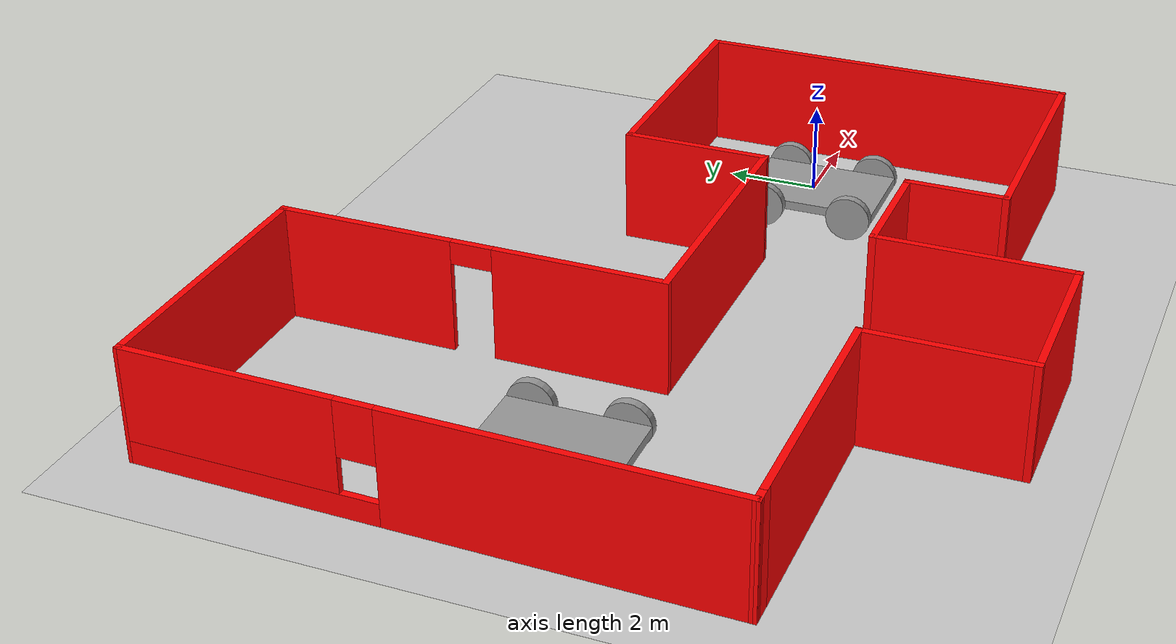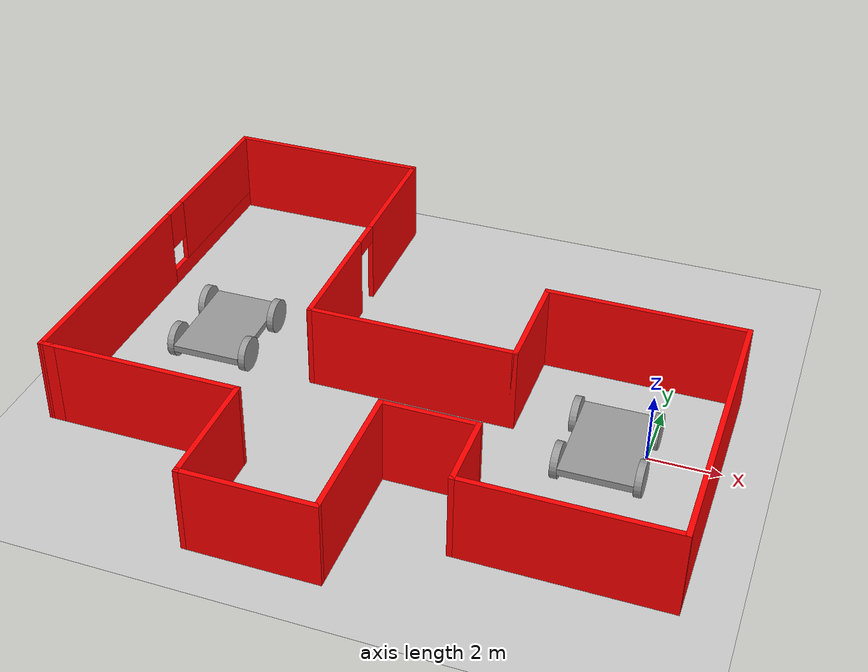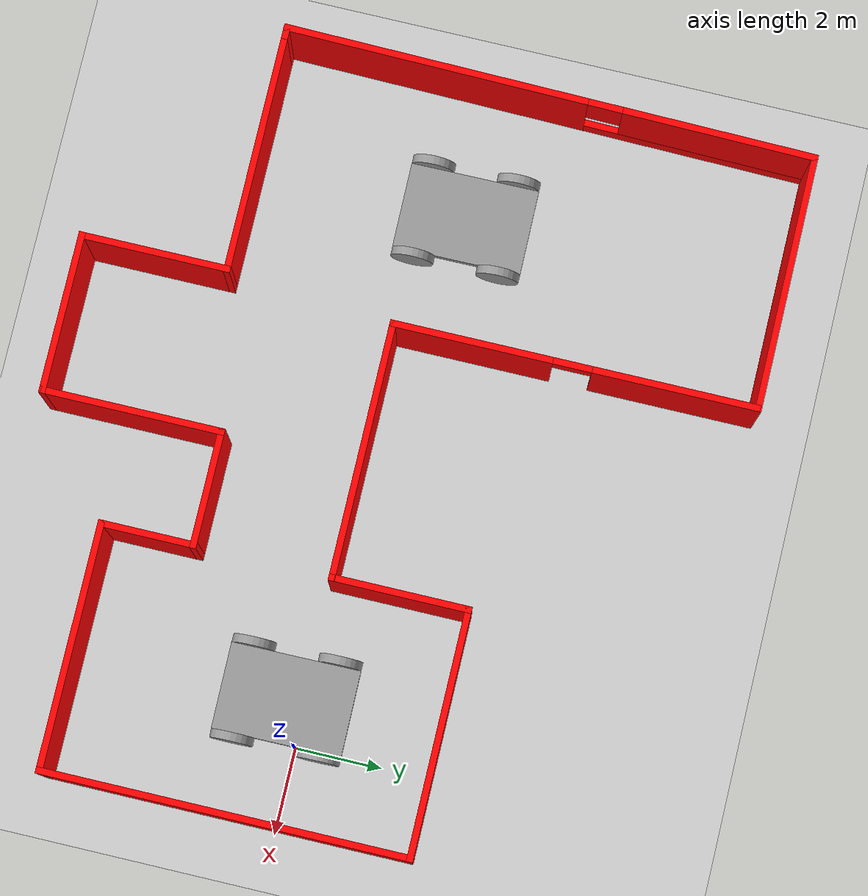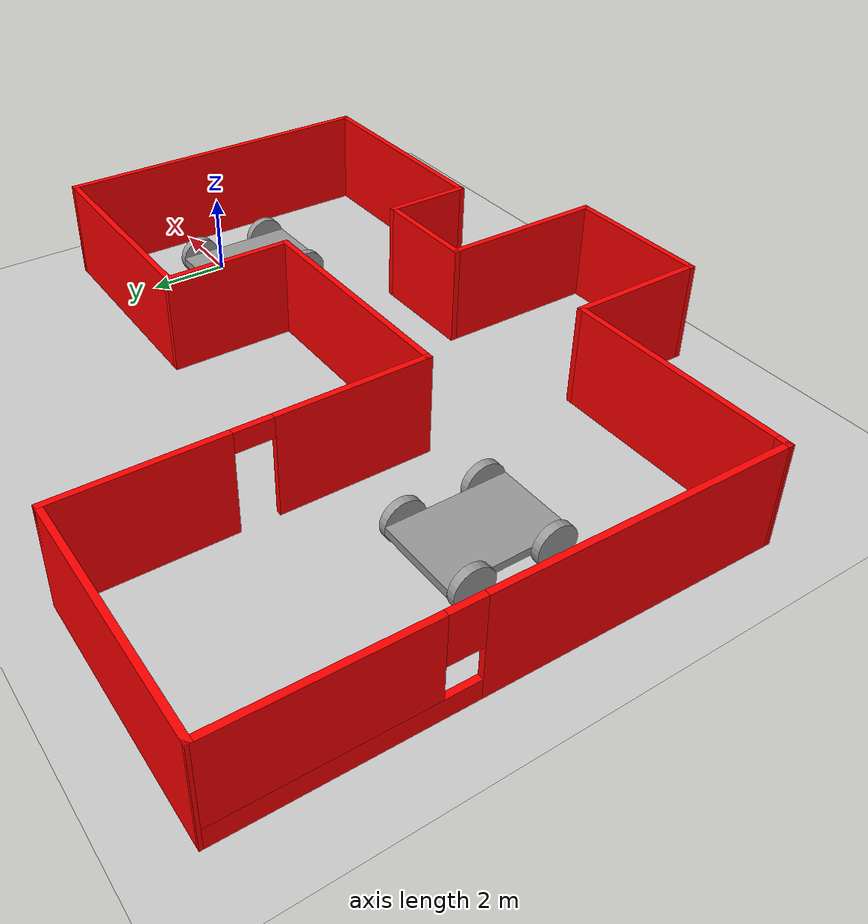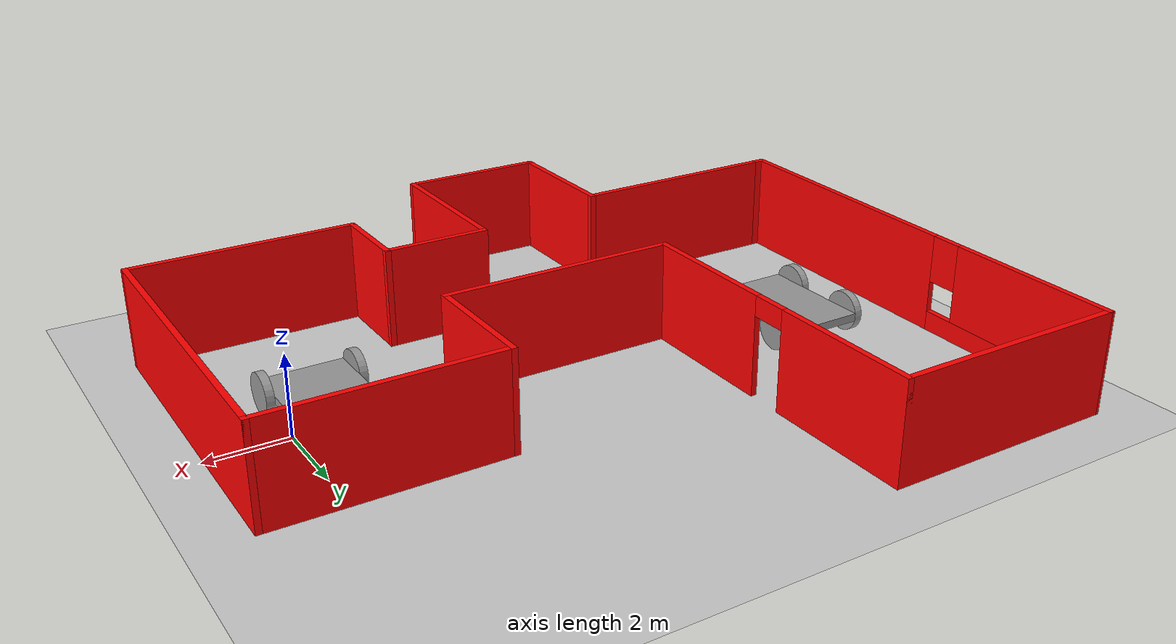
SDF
<sdf version="1.6">
 <world name="default">
  <plugin name="hello" filename="libhello.so"/>
  <light name="sun" type="directional">
   <pose>0 0 10 0 -0 0</pose>
   <diffuse>0.8 0.8 0.8 1</diffuse>
   <specular>0.2 0.2 0.2 1</specular>
   <attenuation>
    <range>1000</range>
    <constant>0.9</constant>
    <linear>0.01</linear>
    <quadratic>0.001</quadratic>
   </attenuation>
   <direction>-0.5 0.1 -0.9</direction>
  </light>
  <model name="ground_plane">
   <static>1</static>
   <link name="link">
    <collision name="collision">
     <geometry><plane><normal>0 0 1</normal><size>100 100</size></plane></geometry>
     <surface>
      <contact><collide_bitmask>65535</collide_bitmask></contact>
      <friction><ode><mu>100</mu><mu2>50</mu2></ode></friction>
     </surface>
    </collision>
    <visual name="visual">
     <cast_shadows>0</cast_shadows>
     <geometry><plane><normal>0 0 1</normal><size>100 100</size></plane></geometry>
     <material>
      <script><uri>file://media/materials/scripts/gazebo.material</uri><name>Gazebo/Grey</name></script>
     </material>
    </visual>
   </link>
  </model>
  <gravity>0 0 -9.8</gravity>
  <magnetic_field>6e-06 2.3e-05 -4.2e-05</magnetic_field>
  <atmosphere type="adiabatic"/>
  <physics name="default_physics" default="0" type="ode">
   <max_step_size>0.001</max_step_size>
   <real_time_factor>1</real_time_factor>
   <real_time_update_rate>1000</real_time_update_rate>
  </physics>
  <scene><ambient>0.4 0.4 0.4 1</ambient><background>0.7 0.7 0.7 1</background><shadows>1</shadows></scene>
  <spherical_coordinates>
   <surface_model>EARTH_WGS84</surface_model>
   <latitude_deg>0</latitude_deg>
   <longitude_deg>0</longitude_deg>
   <elevation>0</elevation>
   <heading_deg>0</heading_deg>
  </spherical_coordinates>
  <model name="HumanoidRobot">
   <link name="link_0">
    <pose>-1e-06 -0 0 0 -0 0</pose>
    <inertial>
     <mass>1</mass>
     <inertia>
      <ixx>0.166667</ixx>
      <ixy>0</ixy>
      <ixz>0</ixz>
      <iyy>0.166667</iyy>
      <iyz>0</iyz>
      <izz>0.166667</izz>
     </inertia>
    </inertial>
    <visual name="visual">
     <geometry><box><size>2 3 0.2</size></box></geometry>
     <material>
      <lighting>1</lighting>
      <script><uri>file://media/materials/scripts/gazebo.material</uri><name>Gazebo/Grey</name></script>
      <shader type="pixel"><normal_map>__default__</normal_map></shader>
      <ambient>0.3 0.3 0.3 1</ambient>
      <diffuse>0.7 0.7 0.7 1</diffuse>
      <specular>0.01 0.01 0.01 1</specular>
      <emissive>0 0 0 1</emissive>
     </material>
    </visual>
    <collision name="collision">
     <geometry><box><size>2 3 0.2</size></box></geometry>
     <surface>
      <friction>
       <ode><mu>1</mu><mu2>1</mu2><fdir1>0 0 0</fdir1><slip1>0</slip1><slip2>0</slip2></ode>
       <torsional>
        <coefficient>1</coefficient>
        <patch_radius>0</patch_radius>
        <surface_radius>0</surface_radius>
        <use_patch_radius>1</use_patch_radius>
        <ode><slip>0</slip></ode>
       </torsional>
      </friction>
      <bounce><restitution_coefficient>0</restitution_coefficient><threshold>1e+06</threshold></bounce>
      <contact>
       <collide_without_contact>0</collide_without_contact>
       <collide_without_contact_bitmask>1</collide_without_contact_bitmask>
       <collide_bitmask>1</collide_bitmask>
       <ode>
        <soft_cfm>0</soft_cfm>
        <soft_erp>0.2</soft_erp>
        <kp>1e+13</kp>
        <kd>1</kd>
        <max_vel>0.01</max_vel>
        <min_depth>0</min_depth>
       </ode>
       <bullet>
        <split_impulse>1</split_impulse>
        <split_impulse_penetration_threshold>-0.01</split_impulse_penetration_threshold>
        <soft_cfm>0</soft_cfm>
        <soft_erp>0.2</soft_erp>
        <kp>1e+13</kp>
        <kd>1</kd>
       </bullet>
      </contact>
     </surface>
    </collision>
   </link>
   <link name="link_1">
    <pose>1.1 -1 0 3.14159 1.57079 3.14159</pose>
    <inertial>
     <mass>1</mass>
     <inertia><ixx>0.145833</ixx><ixy>0</ixy><ixz>0</ixz><iyy>0.145833</iyy><iyz>0</iyz><izz>0.125</izz></inertia>
    </inertial>
    <visual name="visual">
     <geometry><cylinder><radius>0.5</radius><length>0.2</length></cylinder></geometry>
     <material>
      <lighting>1</lighting>
      <script><uri>file://media/materials/scripts/gazebo.material</uri><name>Gazebo/Grey</name></script>
      <shader type="pixel"><normal_map>__default__</normal_map></shader>
      <ambient>0.3 0.3 0.3 1</ambient>
      <diffuse>0.7 0.7 0.7 1</diffuse>
      <specular>0.01 0.01 0.01 1</specular>
      <emissive>0 0 0 1</emissive>
     </material>
    </visual>
    <collision name="collision">
     <geometry><cylinder><radius>0.5</radius><length>0.2</length></cylinder></geometry>
     <surface>
      <friction>
       <ode><mu>1</mu><mu2>1</mu2><fdir1>0 0 0</fdir1><slip1>0</slip1><slip2>0</slip2></ode>
       <torsional>
        <coefficient>1</coefficient>
        <patch_radius>0</patch_radius>
        <surface_radius>0</surface_radius>
        <use_patch_radius>1</use_patch_radius>
        <ode><slip>0</slip></ode>
       </torsional>
      </friction>
      <bounce><restitution_coefficient>0</restitution_coefficient><threshold>1e+06</threshold></bounce>
      <contact>
       <collide_without_contact>0</collide_without_contact>
       <collide_without_contact_bitmask>1</collide_without_contact_bitmask>
       <collide_bitmask>1</collide_bitmask>
       <ode>
        <soft_cfm>0</soft_cfm>
        <soft_erp>0.2</soft_erp>
        <kp>1e+13</kp>
        <kd>1</kd>
        <max_vel>0.01</max_vel>
        <min_depth>0</min_depth>
       </ode>
       <bullet>
        <split_impulse>1</split_impulse>
        <split_impulse_penetration_threshold>-0.01</split_impulse_penetration_threshold>
        <soft_cfm>0</soft_cfm>
        <soft_erp>0.2</soft_erp>
        <kp>1e+13</kp>
        <kd>1</kd>
       </bullet>
      </contact>
     </surface>
    </collision>
   </link>
   <link name="link_1_clone">
    <pose>1.1 1 0 3.14159 1.57079 3.14159</pose>
    <inertial>
     <mass>1</mass>
     <inertia><ixx>0.145833</ixx><ixy>0</ixy><ixz>0</ixz><iyy>0.145833</iyy><iyz>0</iyz><izz>0.125</izz></inertia>
    </inertial>
    <visual name="visual">
     <geometry><cylinder><radius>0.5</radius><length>0.2</length></cylinder></geometry>
     <material>
      <lighting>1</lighting>
      <script><uri>file://media/materials/scripts/gazebo.material</uri><name>Gazebo/Grey</name></script>
      <shader type="pixel"><normal_map>__default__</normal_map></shader>
      <ambient>0.3 0.3 0.3 1</ambient>
      <diffuse>0.7 0.7 0.7 1</diffuse>
      <specular>0.01 0.01 0.01 1</specular>
      <emissive>0 0 0 1</emissive>
     </material>
    </visual>
    <collision name="collision">
     <geometry><cylinder><radius>0.5</radius><length>0.2</length></cylinder></geometry>
     <surface>
      <friction>
       <ode><mu>1</mu><mu2>1</mu2><fdir1>0 0 0</fdir1><slip1>0</slip1><slip2>0</slip2></ode>
       <torsional>
        <coefficient>1</coefficient>
        <patch_radius>0</patch_radius>
        <surface_radius>0</surface_radius>
        <use_patch_radius>1</use_patch_radius>
        <ode><slip>0</slip></ode>
       </torsional>
      </friction>
      <bounce><restitution_coefficient>0</restitution_coefficient><threshold>1e+06</threshold></bounce>
      <contact>
       <collide_without_contact>0</collide_without_contact>
       <collide_without_contact_bitmask>1</collide_without_contact_bitmask>
       <collide_bitmask>1</collide_bitmask>
       <ode>
        <soft_cfm>0</soft_cfm>
        <soft_erp>0.2</soft_erp>
        <kp>1e+13</kp>
        <kd>1</kd>
        <max_vel>0.01</max_vel>
        <min_depth>0</min_depth>
       </ode>
       <bullet>
        <split_impulse>1</split_impulse>
        <split_impulse_penetration_threshold>-0.01</split_impulse_penetration_threshold>
        <soft_cfm>0</soft_cfm>
        <soft_erp>0.2</soft_erp>
        <kp>1e+13</kp>
        <kd>1</kd>
       </bullet>
      </contact>
     </surface>
    </collision>
   </link>
   <link name="link_1_clone_0">
    <pose>-1.1 -1 0 3.14159 1.57079 3.14159</pose>
    <inertial>
     <mass>1</mass>
     <inertia><ixx>0.145833</ixx><ixy>0</ixy><ixz>0</ixz><iyy>0.145833</iyy><iyz>0</iyz><izz>0.125</izz></inertia>
    </inertial>
    <visual name="visual">
     <geometry><cylinder><radius>0.5</radius><length>0.2</length></cylinder></geometry>
     <material>
      <lighting>1</lighting>
      <script><uri>file://media/materials/scripts/gazebo.material</uri><name>Gazebo/Grey</name></script>
      <shader type="pixel"><normal_map>__default__</normal_map></shader>
      <ambient>0.3 0.3 0.3 1</ambient>
      <diffuse>0.7 0.7 0.7 1</diffuse>
      <specular>0.01 0.01 0.01 1</specular>
      <emissive>0 0 0 1</emissive>
     </material>
    </visual>
    <collision name="collision">
     <geometry><cylinder><radius>0.5</radius><length>0.2</length></cylinder></geometry>
     <surface>
      <friction>
       <ode><mu>1</mu><mu2>1</mu2><fdir1>0 0 0</fdir1><slip1>0</slip1><slip2>0</slip2></ode>
       <torsional>
        <coefficient>1</coefficient>
        <patch_radius>0</patch_radius>
        <surface_radius>0</surface_radius>
        <use_patch_radius>1</use_patch_radius>
        <ode><slip>0</slip></ode>
       </torsional>
      </friction>
      <bounce><restitution_coefficient>0</restitution_coefficient><threshold>1e+06</threshold></bounce>
      <contact>
       <collide_without_contact>0</collide_without_contact>
       <collide_without_contact_bitmask>1</collide_without_contact_bitmask>
       <collide_bitmask>1</collide_bitmask>
       <ode>
        <soft_cfm>0</soft_cfm>
        <soft_erp>0.2</soft_erp>
        <kp>1e+13</kp>
        <kd>1</kd>
        <max_vel>0.01</max_vel>
        <min_depth>0</min_depth>
       </ode>
       <bullet>
        <split_impulse>1</split_impulse>
        <split_impulse_penetration_threshold>-0.01</split_impulse_penetration_threshold>
        <soft_cfm>0</soft_cfm>
        <soft_erp>0.2</soft_erp>
        <kp>1e+13</kp>
        <kd>1</kd>
       </bullet>
      </contact>
     </surface>
    </collision>
   </link>
   <link name="link_1_clone_1">
    <pose>-1.1 1 0 3.14159 1.57079 3.14159</pose>
    <inertial>
     <mass>1</mass>
     <inertia><ixx>0.145833</ixx><ixy>0</ixy><ixz>0</ixz><iyy>0.145833</iyy><iyz>0</iyz><izz>0.125</izz></inertia>
    </inertial>
    <visual name="visual">
     <geometry><cylinder><radius>0.5</radius><length>0.2</length></cylinder></geometry>
     <material>
      <lighting>1</lighting>
      <script><uri>file://media/materials/scripts/gazebo.material</uri><name>Gazebo/Grey</name></script>
      <shader type="pixel"><normal_map>__default__</normal_map></shader>
      <ambient>0.3 0.3 0.3 1</ambient>
      <diffuse>0.7 0.7 0.7 1</diffuse>
      <specular>0.01 0.01 0.01 1</specular>
      <emissive>0 0 0 1</emissive>
     </material>
    </visual>
    <collision name="collision">
     <geometry><cylinder><radius>0.5</radius><length>0.2</length></cylinder></geometry>
     <surface>
      <friction>
       <ode><mu>1</mu><mu2>1</mu2><fdir1>0 0 0</fdir1><slip1>0</slip1><slip2>0</slip2></ode>
       <torsional>
        <coefficient>1</coefficient>
        <patch_radius>0</patch_radius>
        <surface_radius>0</surface_radius>
        <use_patch_radius>1</use_patch_radius>
        <ode><slip>0</slip></ode>
       </torsional>
      </friction>
      <bounce><restitution_coefficient>0</restitution_coefficient><threshold>1e+06</threshold></bounce>
      <contact>
       <collide_without_contact>0</collide_without_contact>
       <collide_without_contact_bitmask>1</collide_without_contact_bitmask>
       <collide_bitmask>1</collide_bitmask>
       <ode>
        <soft_cfm>0</soft_cfm>
        <soft_erp>0.2</soft_erp>
        <kp>1e+13</kp>
        <kd>1</kd>
        <max_vel>0.01</max_vel>
        <min_depth>0</min_depth>
       </ode>
       <bullet>
        <split_impulse>1</split_impulse>
        <split_impulse_penetration_threshold>-0.01</split_impulse_penetration_threshold>
        <soft_cfm>0</soft_cfm>
        <soft_erp>0.2</soft_erp>
        <kp>1e+13</kp>
        <kd>1</kd>
       </bullet>
      </contact>
     </surface>
    </collision>
   </link>
   <joint name="link_0_JOINT_0" type="revolute">
    <parent>link_0</parent>
    <child>link_1_clone_0</child>
    <axis>
     <xyz>0 0 1</xyz>
     <use_parent_model_frame>0</use_parent_model_frame>
     <limit>
      <lower>-1.79769e+308</lower>
      <upper>1.79769e+308</upper>
      <effort>-1</effort>
      <velocity>-1</velocity>
     </limit>
     <dynamics>
      <spring_reference>0</spring_reference>
      <spring_stiffness>0</spring_stiffness>
      <damping>0</damping>
     </dynamics>
    </axis>
    <physics>
     <ode><limit><cfm>0</cfm><erp>0.2</erp></limit><suspension><cfm>0</cfm><erp>0.2</erp></suspension></ode>
    </physics>
   </joint>
   <joint name="link_0_JOINT_1" type="revolute">
    <parent>link_0</parent>
    <child>link_1_clone_1</child>
    <axis>
     <xyz>0 0 1</xyz>
     <use_parent_model_frame>0</use_parent_model_frame>
     <limit>
      <lower>-1.79769e+308</lower>
      <upper>1.79769e+308</upper>
      <effort>-1</effort>
      <velocity>-1</velocity>
     </limit>
     <dynamics>
      <spring_reference>0</spring_reference>
      <spring_stiffness>0</spring_stiffness>
      <damping>0</damping>
     </dynamics>
    </axis>
    <physics>
     <ode><limit><cfm>0</cfm><erp>0.2</erp></limit><suspension><cfm>0</cfm><erp>0.2</erp></suspension></ode>
    </physics>
   </joint>
   <joint name="link_0_JOINT_2" type="revolute">
    <parent>link_0</parent>
    <child>link_1_clone</child>
    <axis>
     <xyz>0 0 1</xyz>
     <use_parent_model_frame>0</use_parent_model_frame>
     <limit>
      <lower>-1.79769e+308</lower>
      <upper>1.79769e+308</upper>
      <effort>-1</effort>
      <velocity>-1</velocity>
     </limit>
     <dynamics>
      <spring_reference>0</spring_reference>
      <spring_stiffness>0</spring_stiffness>
      <damping>0</damping>
     </dynamics>
    </axis>
    <physics>
     <ode><limit><cfm>0</cfm><erp>0.2</erp></limit><suspension><cfm>0</cfm><erp>0.2</erp></suspension></ode>
    </physics>
   </joint>
   <joint name="link_0_JOINT_3" type="revolute">
    <parent>link_0</parent>
    <child>link_1</child>
    <axis>
     <xyz>1 0 0</xyz>
     <use_parent_model_frame>0</use_parent_model_frame>
     <limit>
      <lower>-1.79769e+308</lower>
      <upper>1.79769e+308</upper>
      <effort>-1</effort>
      <velocity>-1</velocity>
     </limit>
     <dynamics>
      <spring_reference>0</spring_reference>
      <spring_stiffness>0</spring_stiffness>
      <damping>0</damping>
     </dynamics>
    </axis>
    <physics>
     <ode><limit><cfm>0</cfm><erp>0.2</erp></limit><suspension><cfm>0</cfm><erp>0.2</erp></suspension></ode>
    </physics>
   </joint>
   <static>0</static>
   <pose>-0.989105 -0.431862 0.5 -0 1e-06 0.007061</pose>
  </model>
  <model name="Building">
   <pose>-6.88681 0.57496 0 0 -0 0</pose>
   <link name="Wall_0">
    <collision name="Wall_0_Collision">
     <geometry><box><size>6 0.15 2.5</size></box></geometry>
     <pose>0 0 1.25 0 -0 0</pose>
    </collision>
    <visual name="Wall_0_Visual">
     <pose>0 0 1.25 0 -0 0</pose>
     <geometry><box><size>6 0.15 2.5</size></box></geometry>
     <material>
      <script><uri>file://media/materials/scripts/gazebo.material</uri><name>Gazebo/Grey</name></script>
      <ambient>1 0 0 1</ambient>
     </material>
     <meta><layer>0</layer></meta>
    </visual>
    <pose>-5.62439 7.79939 0 0 -0 0</pose>
   </link>
   <link name="Wall_1">
    <pose>-2.69939 3.62439 0 0 0 -1.5708</pose>
    <visual name="Wall_1_Visual_0">
     <pose>-2.31887 0 1.25 0 -0 0</pose>
     <geometry><box><size>3.86226 0.15 2.5</size></box></geometry>
     <material>
      <script><uri>file://media/materials/scripts/gazebo.material</uri><name>Gazebo/Grey</name></script>
      <ambient>1 0 0 1</ambient>
     </material>
     <meta><layer>0</layer></meta>
    </visual>
    <collision name="Wall_1_Collision_0">
     <geometry><box><size>3.86226 0.15 2.5</size></box></geometry>
     <pose>-2.31887 0 1.25 0 -0 0</pose>
    </collision>
    <visual name="Wall_1_Visual_1">
     <pose>2.38113 0 1.25 0 -0 0</pose>
     <geometry><box><size>3.73774 0.15 2.5</size></box></geometry>
     <material>
      <script><uri>file://media/materials/scripts/gazebo.material</uri><name>Gazebo/Grey</name></script>
      <ambient>1 0 0 1</ambient>
     </material>
     <meta><layer>0</layer></meta>
    </visual>
    <collision name="Wall_1_Collision_1">
     <geometry><box><size>3.73774 0.15 2.5</size></box></geometry>
     <pose>2.38113 0 1.25 0 -0 0</pose>
    </collision>
    <visual name="Wall_1_Visual_2">
     <pose>0.062263 0 2.25 0 -0 0</pose>
     <geometry><box><size>0.9 0.15 0.5</size></box></geometry>
     <material>
      <script><uri>file://media/materials/scripts/gazebo.material</uri><name>Gazebo/Grey</name></script>
      <ambient>1 0 0 1</ambient>
     </material>
     <meta><layer>0</layer></meta>
    </visual>
    <collision name="Wall_1_Collision_2">
     <geometry><box><size>0.9 0.15 0.5</size></box></geometry>
     <pose>0.062263 0 2.25 0 -0 0</pose>
    </collision>
   </link>
   <link name="Wall_10">
    <collision name="Wall_10_Collision">
     <geometry><box><size>3.75 0.15 2.5</size></box></geometry>
     <pose>0 0 1.25 0 -0 0</pose>
    </collision>
    <visual name="Wall_10_Visual">
     <pose>0 0 1.25 0 -0 0</pose>
     <geometry><box><size>3.75 0.15 2.5</size></box></geometry>
     <material>
      <script><uri>file://media/materials/scripts/gazebo.material</uri><name>Gazebo/Grey</name></script>
      <ambient>1 0 0 1</ambient>
     </material>
     <meta><layer>0</layer></meta>
    </visual>
    <pose>-1.24939 -7.80061 0 0 -0 3.14159</pose>
   </link>
   <link name="Wall_11">
    <collision name="Wall_11_Collision">
     <geometry><box><size>3.5 0.15 2.5</size></box></geometry>
     <pose>0 0 1.25 0 -0 0</pose>
    </collision>
    <visual name="Wall_11_Visual">
     <pose>0 0 1.25 0 -0 0</pose>
     <geometry><box><size>3.5 0.15 2.5</size></box></geometry>
     <material>
      <script><uri>file://media/materials/scripts/gazebo.material</uri><name>Gazebo/Grey</name></script>
      <ambient>1 0 0 1</ambient>
     </material>
     <meta><layer>0</layer></meta>
    </visual>
    <pose>-3.04939 -6.12561 0 0 -0 1.5708</pose>
   </link>
   <link name="Wall_12">
    <collision name="Wall_12_Collision">
     <geometry><box><size>5.5 0.15 2.5</size></box></geometry>
     <pose>0 0 1.25 0 -0 0</pose>
    </collision>
    <visual name="Wall_12_Visual">
     <pose>0 0 1.25 0 -0 0</pose>
     <geometry><box><size>5.5 0.15 2.5</size></box></geometry>
     <material>
      <script><uri>file://media/materials/scripts/gazebo.material</uri><name>Gazebo/Grey</name></script>
      <ambient>1 0 0 1</ambient>
     </material>
     <meta><layer>0</layer></meta>
    </visual>
    <pose>-5.72439 -4.45061 0 0 -0 3.14159</pose>
   </link>
   <link name="Wall_13">
    <collision name="Wall_13_Collision">
     <geometry><box><size>0.5 0.15 2.5</size></box></geometry>
     <pose>0 0 1.25 0 -0 0</pose>
    </collision>
    <visual name="Wall_13_Visual">
     <pose>0 0 1.25 0 -0 0</pose>
     <geometry><box><size>0.5 0.15 2.5</size></box></geometry>
     <material>
      <script><uri>file://media/materials/scripts/gazebo.material</uri><name>Gazebo/Grey</name></script>
      <ambient>1 0 0 1</ambient>
     </material>
     <meta><layer>0</layer></meta>
    </visual>
    <pose>-8.57439 -4.45061 0 0 -0 3.14159</pose>
   </link>
   <link name="Wall_14">
    <pose>-8.64939 1.67439 0 0 -0 1.55447</pose>
    <visual name="Wall_14_Visual_0">
     <pose>-2.65769 0 1.25 0 -0 0</pose>
     <geometry><box><size>7.08626 0.15 2.5</size></box></geometry>
     <material>
      <script><uri>file://media/materials/scripts/gazebo.material</uri><name>Gazebo/Grey</name></script>
      <ambient>1 0 0 1</ambient>
     </material>
     <meta><layer>0</layer></meta>
    </visual>
    <collision name="Wall_14_Collision_0">
     <geometry><box><size>7.08626 0.15 2.5</size></box></geometry>
     <pose>-2.65769 0 1.25 0 -0 0</pose>
    </collision>
    <visual name="Wall_14_Visual_1">
     <pose>3.54313 0 0.25 0 -0 0</pose>
     <geometry><box><size>5.31538 0.15 0.5</size></box></geometry>
     <material>
      <script><uri>file://media/materials/scripts/gazebo.material</uri><name>Gazebo/Grey</name></script>
      <ambient>1 0 0 1</ambient>
     </material>
     <meta><layer>0</layer></meta>
    </visual>
    <collision name="Wall_14_Collision_1">
     <geometry><box><size>5.31538 0.15 0.5</size></box></geometry>
     <pose>3.54313 0 0.25 0 -0 0</pose>
    </collision>
    <visual name="Wall_14_Visual_2">
     <pose>3.94313 0 1.5 0 -0 0</pose>
     <geometry><box><size>4.51538 0.15 2</size></box></geometry>
     <material>
      <script><uri>file://media/materials/scripts/gazebo.material</uri><name>Gazebo/Grey</name></script>
      <ambient>1 0 0 1</ambient>
     </material>
     <meta><layer>0</layer></meta>
    </visual>
    <collision name="Wall_14_Collision_2">
     <geometry><box><size>4.51538 0.15 2</size></box></geometry>
     <pose>3.94313 0 1.5 0 -0 0</pose>
    </collision>
    <visual name="Wall_14_Visual_3">
     <pose>1.28544 0 1.9 0 -0 0</pose>
     <geometry><box><size>0.8 0.15 1.2</size></box></geometry>
     <material>
      <script><uri>file://media/materials/scripts/gazebo.material</uri><name>Gazebo/Grey</name></script>
      <ambient>1 0 0 1</ambient>
     </material>
     <meta><layer>0</layer></meta>
    </visual>
    <collision name="Wall_14_Collision_3">
     <geometry><box><size>0.8 0.15 1.2</size></box></geometry>
     <pose>1.28544 0 1.9 0 -0 0</pose>
    </collision>
   </link>
   <link name="Wall_2">
    <collision name="Wall_2_Collision">
     <geometry><box><size>6 0.15 2.5</size></box></geometry>
     <pose>0 0 1.25 0 -0 0</pose>
    </collision>
    <visual name="Wall_2_Visual">
     <pose>0 0 1.25 0 -0 0</pose>
     <geometry><box><size>6 0.15 2.5</size></box></geometry>
     <material>
      <script><uri>file://media/materials/scripts/gazebo.material</uri><name>Gazebo/Grey</name></script>
      <ambient>1 0 0 1</ambient>
     </material>
     <meta><layer>0</layer></meta>
    </visual>
    <pose>0.225607 -0.550607 0 0 -0 0</pose>
   </link>
   <link name="Wall_3">
    <collision name="Wall_3_Collision">
     <geometry><box><size>3.25 0.15 2.5</size></box></geometry>
     <pose>0 0 1.25 0 -0 0</pose>
    </collision>
    <visual name="Wall_3_Visual">
     <pose>0 0 1.25 0 -0 0</pose>
     <geometry><box><size>3.25 0.15 2.5</size></box></geometry>
     <material>
      <script><uri>file://media/materials/scripts/gazebo.material</uri><name>Gazebo/Grey</name></script>
      <ambient>1 0 0 1</ambient>
     </material>
     <meta><layer>0</layer></meta>
    </visual>
    <pose>3.15061 0.999393 0 0 -0 1.5708</pose>
   </link>
   <link name="Wall_4">
    <collision name="Wall_4_Collision">
     <geometry><box><size>5.75 0.15 2.5</size></box></geometry>
     <pose>0 0 1.25 0 -0 0</pose>
    </collision>
    <visual name="Wall_4_Visual">
     <pose>0 0 1.25 0 -0 0</pose>
     <geometry><box><size>5.75 0.15 2.5</size></box></geometry>
     <material>
      <script><uri>file://media/materials/scripts/gazebo.material</uri><name>Gazebo/Grey</name></script>
      <ambient>1 0 0 1</ambient>
     </material>
     <meta><layer>0</layer></meta>
    </visual>
    <pose>5.95061 2.54939 0 0 -0 0</pose>
   </link>
   <link name="Wall_5">
    <collision name="Wall_5_Collision">
     <geometry><box><size>8.5 0.15 2.5</size></box></geometry>
     <pose>0 0 1.25 0 -0 0</pose>
    </collision>
    <visual name="Wall_5_Visual">
     <pose>0 0 1.25 0 -0 0</pose>
     <geometry><box><size>8.5 0.15 2.5</size></box></geometry>
     <material>
      <script><uri>file://media/materials/scripts/gazebo.material</uri><name>Gazebo/Grey</name></script>
      <ambient>1 0 0 1</ambient>
     </material>
     <meta><layer>0</layer></meta>
    </visual>
    <pose>8.75061 -1.62561 0 0 0 -1.5708</pose>
   </link>
   <link name="Wall_6">
    <collision name="Wall_6_Collision">
     <geometry><box><size>5.75 0.15 2.5</size></box></geometry>
     <pose>0 0 1.25 0 -0 0</pose>
    </collision>
    <visual name="Wall_6_Visual">
     <pose>0 0 1.25 0 -0 0</pose>
     <geometry><box><size>5.75 0.15 2.5</size></box></geometry>
     <material>
      <script><uri>file://media/materials/scripts/gazebo.material</uri><name>Gazebo/Grey</name></script>
      <ambient>1 0 0 1</ambient>
     </material>
     <meta><layer>0</layer></meta>
    </visual>
    <pose>5.95061 -5.80061 0 0 -0 3.14159</pose>
   </link>
   <link name="Wall_7">
    <collision name="Wall_7_Collision">
     <geometry><box><size>2.25 0.15 2.5</size></box></geometry>
     <pose>0 0 1.25 0 -0 0</pose>
    </collision>
    <visual name="Wall_7_Visual">
     <pose>0 0 1.25 0 -0 0</pose>
     <geometry><box><size>2.25 0.15 2.5</size></box></geometry>
     <material>
      <script><uri>file://media/materials/scripts/gazebo.material</uri><name>Gazebo/Grey</name></script>
      <ambient>1 0 0 1</ambient>
     </material>
     <meta><layer>0</layer></meta>
    </visual>
    <pose>3.15061 -4.75061 0 0 -0 1.5708</pose>
   </link>
   <link name="Wall_8">
    <collision name="Wall_8_Collision">
     <geometry><box><size>2.75 0.15 2.5</size></box></geometry>
     <pose>0 0 1.25 0 -0 0</pose>
    </collision>
    <visual name="Wall_8_Visual">
     <pose>0 0 1.25 0 -0 0</pose>
     <geometry><box><size>2.75 0.15 2.5</size></box></geometry>
     <material>
      <script><uri>file://media/materials/scripts/gazebo.material</uri><name>Gazebo/Grey</name></script>
      <ambient>1 0 0 1</ambient>
     </material>
     <meta><layer>0</layer></meta>
    </visual>
    <pose>1.85061 -3.70061 0 0 -0 3.14159</pose>
   </link>
   <link name="Wall_9">
    <collision name="Wall_9_Collision">
     <geometry><box><size>4.25 0.15 2.5</size></box></geometry>
     <pose>0 0 1.25 0 -0 0</pose>
    </collision>
    <visual name="Wall_9_Visual">
     <pose>0 0 1.25 0 -0 0</pose>
     <geometry><box><size>4.25 0.15 2.5</size></box></geometry>
     <material>
      <script><uri>file://media/materials/scripts/gazebo.material</uri><name>Gazebo/Grey</name></script>
      <ambient>1 0 0 1</ambient>
     </material>
     <meta><layer>0</layer></meta>
    </visual>
    <pose>0.550607 -5.75061 0 0 0 -1.5708</pose>
   </link>
   <static>1</static>
  </model>
  <model name="HumanoidRobot_clone">
   <link name="link_0">
    <pose>-1e-06 -0 0 0 -0 0</pose>
    <inertial>
     <mass>1</mass>
     <inertia>
      <ixx>0.166667</ixx>
      <ixy>0</ixy>
      <ixz>0</ixz>
      <iyy>0.166667</iyy>
      <iyz>0</iyz>
      <izz>0.166667</izz>
     </inertia>
    </inertial>
    <visual name="visual">
     <geometry><box><size>2 3 0.2</size></box></geometry>
     <material>
      <lighting>1</lighting>
      <script><uri>file://media/materials/scripts/gazebo.material</uri><name>Gazebo/Grey</name></script>
      <shader type="pixel"><normal_map>__default__</normal_map></shader>
      <ambient>0.3 0.3 0.3 1</ambient>
      <diffuse>0.7 0.7 0.7 1</diffuse>
      <specular>0.01 0.01 0.01 1</specular>
      <emissive>0 0 0 1</emissive>
     </material>
    </visual>
    <collision name="collision">
     <geometry><box><size>2 3 0.2</size></box></geometry>
     <surface>
      <friction>
       <ode><mu>1</mu><mu2>1</mu2><fdir1>0 0 0</fdir1><slip1>0</slip1><slip2>0</slip2></ode>
       <torsional>
        <coefficient>1</coefficient>
        <patch_radius>0</patch_radius>
        <surface_radius>0</surface_radius>
        <use_patch_radius>1</use_patch_radius>
        <ode><slip>0</slip></ode>
       </torsional>
      </friction>
      <bounce><restitution_coefficient>0</restitution_coefficient><threshold>1e+06</threshold></bounce>
      <contact>
       <collide_without_contact>0</collide_without_contact>
       <collide_without_contact_bitmask>1</collide_without_contact_bitmask>
       <collide_bitmask>1</collide_bitmask>
       <ode>
        <soft_cfm>0</soft_cfm>
        <soft_erp>0.2</soft_erp>
        <kp>1e+13</kp>
        <kd>1</kd>
        <max_vel>0.01</max_vel>
        <min_depth>0</min_depth>
       </ode>
       <bullet>
        <split_impulse>1</split_impulse>
        <split_impulse_penetration_threshold>-0.01</split_impulse_penetration_threshold>
        <soft_cfm>0</soft_cfm>
        <soft_erp>0.2</soft_erp>
        <kp>1e+13</kp>
        <kd>1</kd>
       </bullet>
      </contact>
     </surface>
    </collision>
   </link>
   <link name="link_1">
    <pose>1.1 -1 0 3.14159 1.57079 3.14159</pose>
    <inertial>
     <mass>1</mass>
     <inertia><ixx>0.145833</ixx><ixy>0</ixy><ixz>0</ixz><iyy>0.145833</iyy><iyz>0</iyz><izz>0.125</izz></inertia>
    </inertial>
    <visual name="visual">
     <geometry><cylinder><radius>0.5</radius><length>0.2</length></cylinder></geometry>
     <material>
      <lighting>1</lighting>
      <script><uri>file://media/materials/scripts/gazebo.material</uri><name>Gazebo/Grey</name></script>
      <shader type="pixel"><normal_map>__default__</normal_map></shader>
      <ambient>0.3 0.3 0.3 1</ambient>
      <diffuse>0.7 0.7 0.7 1</diffuse>
      <specular>0.01 0.01 0.01 1</specular>
      <emissive>0 0 0 1</emissive>
     </material>
    </visual>
    <collision name="collision">
     <geometry><cylinder><radius>0.5</radius><length>0.2</length></cylinder></geometry>
     <surface>
      <friction>
       <ode><mu>1</mu><mu2>1</mu2><fdir1>0 0 0</fdir1><slip1>0</slip1><slip2>0</slip2></ode>
       <torsional>
        <coefficient>1</coefficient>
        <patch_radius>0</patch_radius>
        <surface_radius>0</surface_radius>
        <use_patch_radius>1</use_patch_radius>
        <ode><slip>0</slip></ode>
       </torsional>
      </friction>
      <bounce><restitution_coefficient>0</restitution_coefficient><threshold>1e+06</threshold></bounce>
      <contact>
       <collide_without_contact>0</collide_without_contact>
       <collide_without_contact_bitmask>1</collide_without_contact_bitmask>
       <collide_bitmask>1</collide_bitmask>
       <ode>
        <soft_cfm>0</soft_cfm>
        <soft_erp>0.2</soft_erp>
        <kp>1e+13</kp>
        <kd>1</kd>
        <max_vel>0.01</max_vel>
        <min_depth>0</min_depth>
       </ode>
       <bullet>
        <split_impulse>1</split_impulse>
        <split_impulse_penetration_threshold>-0.01</split_impulse_penetration_threshold>
        <soft_cfm>0</soft_cfm>
        <soft_erp>0.2</soft_erp>
        <kp>1e+13</kp>
        <kd>1</kd>
       </bullet>
      </contact>
     </surface>
    </collision>
   </link>
   <link name="link_1_clone">
    <pose>1.1 1 0 3.14159 1.57079 3.14159</pose>
    <inertial>
     <mass>1</mass>
     <inertia><ixx>0.145833</ixx><ixy>0</ixy><ixz>0</ixz><iyy>0.145833</iyy><iyz>0</iyz><izz>0.125</izz></inertia>
    </inertial>
    <visual name="visual">
     <geometry><cylinder><radius>0.5</radius><length>0.2</length></cylinder></geometry>
     <material>
      <lighting>1</lighting>
      <script><uri>file://media/materials/scripts/gazebo.material</uri><name>Gazebo/Grey</name></script>
      <shader type="pixel"><normal_map>__default__</normal_map></shader>
      <ambient>0.3 0.3 0.3 1</ambient>
      <diffuse>0.7 0.7 0.7 1</diffuse>
      <specular>0.01 0.01 0.01 1</specular>
      <emissive>0 0 0 1</emissive>
     </material>
    </visual>
    <collision name="collision">
     <geometry><cylinder><radius>0.5</radius><length>0.2</length></cylinder></geometry>
     <surface>
      <friction>
       <ode><mu>1</mu><mu2>1</mu2><fdir1>0 0 0</fdir1><slip1>0</slip1><slip2>0</slip2></ode>
       <torsional>
        <coefficient>1</coefficient>
        <patch_radius>0</patch_radius>
        <surface_radius>0</surface_radius>
        <use_patch_radius>1</use_patch_radius>
        <ode><slip>0</slip></ode>
       </torsional>
      </friction>
      <bounce><restitution_coefficient>0</restitution_coefficient><threshold>1e+06</threshold></bounce>
      <contact>
       <collide_without_contact>0</collide_without_contact>
       <collide_without_contact_bitmask>1</collide_without_contact_bitmask>
       <collide_bitmask>1</collide_bitmask>
       <ode>
        <soft_cfm>0</soft_cfm>
        <soft_erp>0.2</soft_erp>
        <kp>1e+13</kp>
        <kd>1</kd>
        <max_vel>0.01</max_vel>
        <min_depth>0</min_depth>
       </ode>
       <bullet>
        <split_impulse>1</split_impulse>
        <split_impulse_penetration_threshold>-0.01</split_impulse_penetration_threshold>
        <soft_cfm>0</soft_cfm>
        <soft_erp>0.2</soft_erp>
        <kp>1e+13</kp>
        <kd>1</kd>
       </bullet>
      </contact>
     </surface>
    </collision>
   </link>
   <link name="link_1_clone_0">
    <pose>-1.1 -1 0 3.14159 1.57079 3.14159</pose>
    <inertial>
     <mass>1</mass>
     <inertia><ixx>0.145833</ixx><ixy>0</ixy><ixz>0</ixz><iyy>0.145833</iyy><iyz>0</iyz><izz>0.125</izz></inertia>
    </inertial>
    <visual name="visual">
     <geometry><cylinder><radius>0.5</radius><length>0.2</length></cylinder></geometry>
     <material>
      <lighting>1</lighting>
      <script><uri>file://media/materials/scripts/gazebo.material</uri><name>Gazebo/Grey</name></script>
      <shader type="pixel"><normal_map>__default__</normal_map></shader>
      <ambient>0.3 0.3 0.3 1</ambient>
      <diffuse>0.7 0.7 0.7 1</diffuse>
      <specular>0.01 0.01 0.01 1</specular>
      <emissive>0 0 0 1</emissive>
     </material>
    </visual>
    <collision name="collision">
     <geometry><cylinder><radius>0.5</radius><length>0.2</length></cylinder></geometry>
     <surface>
      <friction>
       <ode><mu>1</mu><mu2>1</mu2><fdir1>0 0 0</fdir1><slip1>0</slip1><slip2>0</slip2></ode>
       <torsional>
        <coefficient>1</coefficient>
        <patch_radius>0</patch_radius>
        <surface_radius>0</surface_radius>
        <use_patch_radius>1</use_patch_radius>
        <ode><slip>0</slip></ode>
       </torsional>
      </friction>
      <bounce><restitution_coefficient>0</restitution_coefficient><threshold>1e+06</threshold></bounce>
      <contact>
       <collide_without_contact>0</collide_without_contact>
       <collide_without_contact_bitmask>1</collide_without_contact_bitmask>
       <collide_bitmask>1</collide_bitmask>
       <ode>
        <soft_cfm>0</soft_cfm>
        <soft_erp>0.2</soft_erp>
        <kp>1e+13</kp>
        <kd>1</kd>
        <max_vel>0.01</max_vel>
        <min_depth>0</min_depth>
       </ode>
       <bullet>
        <split_impulse>1</split_impulse>
        <split_impulse_penetration_threshold>-0.01</split_impulse_penetration_threshold>
        <soft_cfm>0</soft_cfm>
        <soft_erp>0.2</soft_erp>
        <kp>1e+13</kp>
        <kd>1</kd>
       </bullet>
      </contact>
     </surface>
    </collision>
   </link>
   <link name="link_1_clone_1">
    <pose>-1.1 1 0 3.14159 1.57079 3.14159</pose>
    <inertial>
     <mass>1</mass>
     <inertia><ixx>0.145833</ixx><ixy>0</ixy><ixz>0</ixz><iyy>0.145833</iyy><iyz>0</iyz><izz>0.125</izz></inertia>
    </inertial>
    <visual name="visual">
     <geometry><cylinder><radius>0.5</radius><length>0.2</length></cylinder></geometry>
     <material>
      <lighting>1</lighting>
      <script><uri>file://media/materials/scripts/gazebo.material</uri><name>Gazebo/Grey</name></script>
      <shader type="pixel"><normal_map>__default__</normal_map></shader>
      <ambient>0.3 0.3 0.3 1</ambient>
      <diffuse>0.7 0.7 0.7 1</diffuse>
      <specular>0.01 0.01 0.01 1</specular>
      <emissive>0 0 0 1</emissive>
     </material>
    </visual>
    <collision name="collision">
     <geometry><cylinder><radius>0.5</radius><length>0.2</length></cylinder></geometry>
     <surface>
      <friction>
       <ode><mu>1</mu><mu2>1</mu2><fdir1>0 0 0</fdir1><slip1>0</slip1><slip2>0</slip2></ode>
       <torsional>
        <coefficient>1</coefficient>
        <patch_radius>0</patch_radius>
        <surface_radius>0</surface_radius>
        <use_patch_radius>1</use_patch_radius>
        <ode><slip>0</slip></ode>
       </torsional>
      </friction>
      <bounce><restitution_coefficient>0</restitution_coefficient><threshold>1e+06</threshold></bounce>
      <contact>
       <collide_without_contact>0</collide_without_contact>
       <collide_without_contact_bitmask>1</collide_without_contact_bitmask>
       <collide_bitmask>1</collide_bitmask>
       <ode>
        <soft_cfm>0</soft_cfm>
        <soft_erp>0.2</soft_erp>
        <kp>1e+13</kp>
        <kd>1</kd>
        <max_vel>0.01</max_vel>
        <min_depth>0</min_depth>
       </ode>
       <bullet>
        <split_impulse>1</split_impulse>
        <split_impulse_penetration_threshold>-0.01</split_impulse_penetration_threshold>
        <soft_cfm>0</soft_cfm>
        <soft_erp>0.2</soft_erp>
        <kp>1e+13</kp>
        <kd>1</kd>
       </bullet>
      </contact>
     </surface>
    </collision>
   </link>
   <joint name="link_0_JOINT_0" type="revolute">
    <parent>link_0</parent>
    <child>link_1_clone_0</child>
    <axis>
     <xyz>0 0 1</xyz>
     <use_parent_model_frame>0</use_parent_model_frame>
     <limit>
      <lower>-1.79769e+308</lower>
      <upper>1.79769e+308</upper>
      <effort>-1</effort>
      <velocity>-1</velocity>
     </limit>
     <dynamics>
      <spring_reference>0</spring_reference>
      <spring_stiffness>0</spring_stiffness>
      <damping>0</damping>
     </dynamics>
    </axis>
    <physics>
     <ode><limit><cfm>0</cfm><erp>0.2</erp></limit><suspension><cfm>0</cfm><erp>0.2</erp></suspension></ode>
    </physics>
   </joint>
   <joint name="link_0_JOINT_1" type="revolute">
    <parent>link_0</parent>
    <child>link_1_clone_1</child>
    <axis>
     <xyz>0 0 1</xyz>
     <use_parent_model_frame>0</use_parent_model_frame>
     <limit>
      <lower>-1.79769e+308</lower>
      <upper>1.79769e+308</upper>
      <effort>-1</effort>
      <velocity>-1</velocity>
     </limit>
     <dynamics>
      <spring_reference>0</spring_reference>
      <spring_stiffness>0</spring_stiffness>
      <damping>0</damping>
     </dynamics>
    </axis>
    <physics>
     <ode><limit><cfm>0</cfm><erp>0.2</erp></limit><suspension><cfm>0</cfm><erp>0.2</erp></suspension></ode>
    </physics>
   </joint>
   <joint name="link_0_JOINT_2" type="revolute">
    <parent>link_0</parent>
    <child>link_1_clone</child>
    <axis>
     <xyz>0 0 1</xyz>
     <use_parent_model_frame>0</use_parent_model_frame>
     <limit>
      <lower>-1.79769e+308</lower>
      <upper>1.79769e+308</upper>
      <effort>-1</effort>
      <velocity>-1</velocity>
     </limit>
     <dynamics>
      <spring_reference>0</spring_reference>
      <spring_stiffness>0</spring_stiffness>
      <damping>0</damping>
     </dynamics>
    </axis>
    <physics>
     <ode><limit><cfm>0</cfm><erp>0.2</erp></limit><suspension><cfm>0</cfm><erp>0.2</erp></suspension></ode>
    </physics>
   </joint>
   <joint name="link_0_JOINT_3" type="revolute">
    <parent>link_0</parent>
    <child>link_1</child>
    <axis>
     <xyz>1 0 0</xyz>
     <use_parent_model_frame>0</use_parent_model_frame>
     <limit>
      <lower>-1.79769e+308</lower>
      <upper>1.79769e+308</upper>
      <effort>-1</effort>
      <velocity>-1</velocity>
     </limit>
     <dynamics>
      <spring_reference>0</spring_reference>
      <spring_stiffness>0</spring_stiffness>
      <damping>0</damping>
     </dynamics>
    </axis>
    <physics>
     <ode><limit><cfm>0</cfm><erp>0.2</erp></limit><suspension><cfm>0</cfm><erp>0.2</erp></suspension></ode>
    </physics>
   </joint>
   <static>0</static>
   <pose>-12.6641 0.985471 0.499999 -0 -1e-06 0.007313</pose>
  </model>
 </world>
</sdf>
